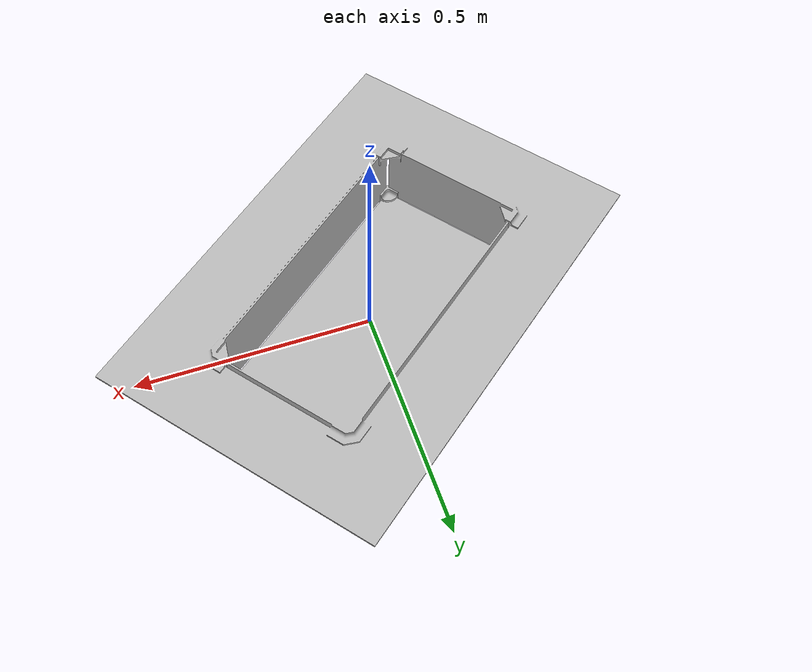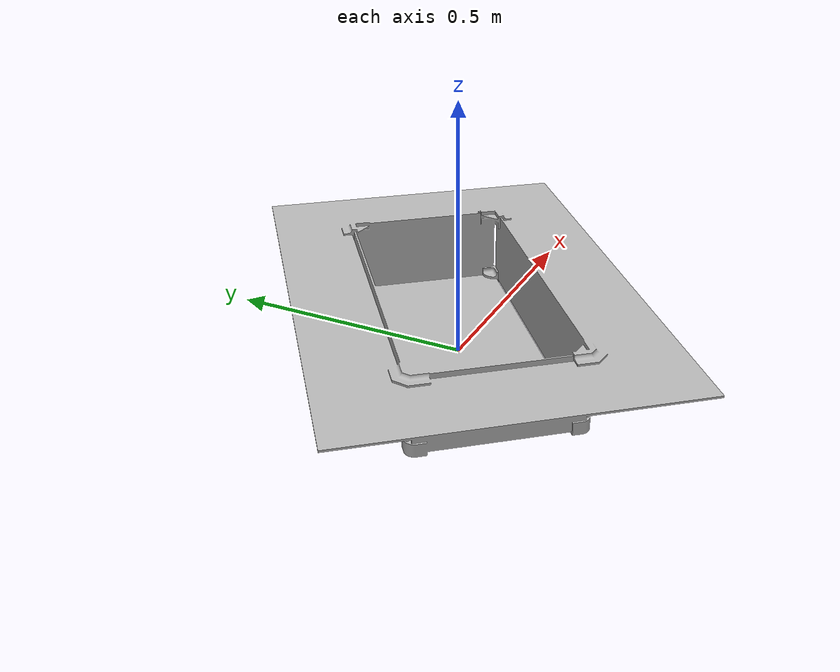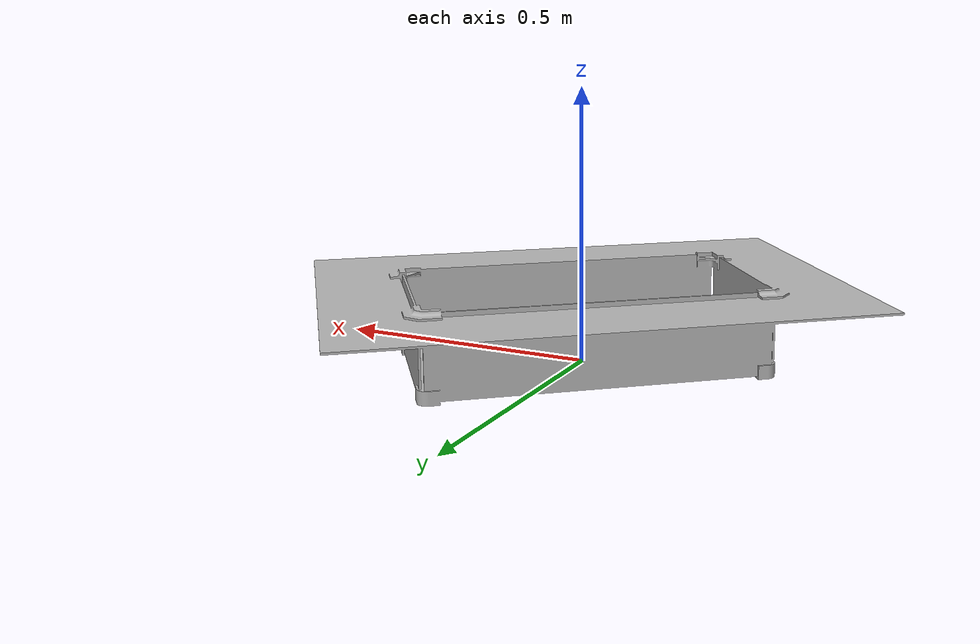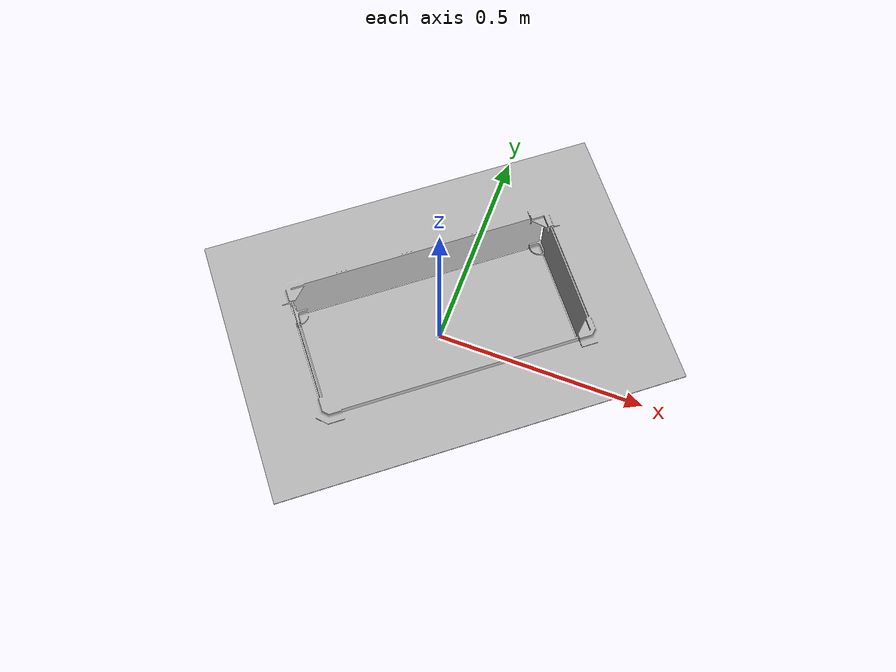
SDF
<?xml version="1.0"?>
<sdf version="1.5">
  <model name="bin_assembly2">
    <static>true</static>
    <link name="bin2">
      <collision name='bin2col'>
        <pose>0 0 0 0 0 .67</pose>
        <geometry>
          <mesh>
            <uri>file://bin/Bin_Assembly2.dae</uri>
          </mesh>
        </geometry>
      </collision>
      <visual name="bin2vis">
        <pose>0 0 0 0 0 .67</pose>
        <geometry>
          <mesh>
            <uri>file://bin/Bin_Assembly2.dae</uri>
          </mesh>
        </geometry>
      </visual>
    </link>
  </model>
</sdf>
